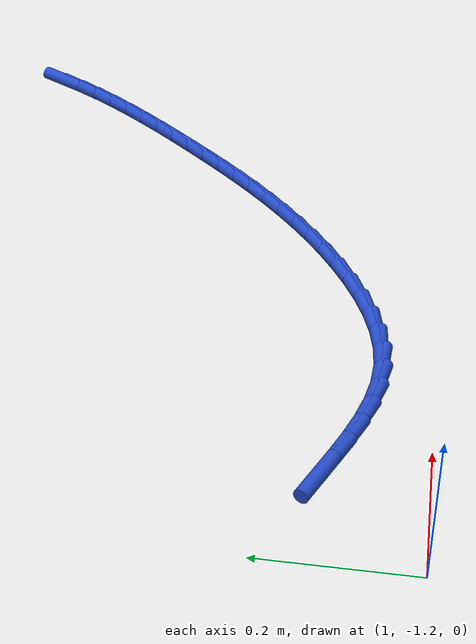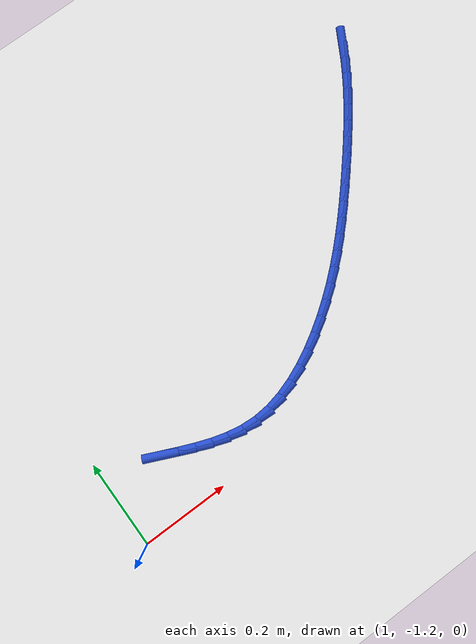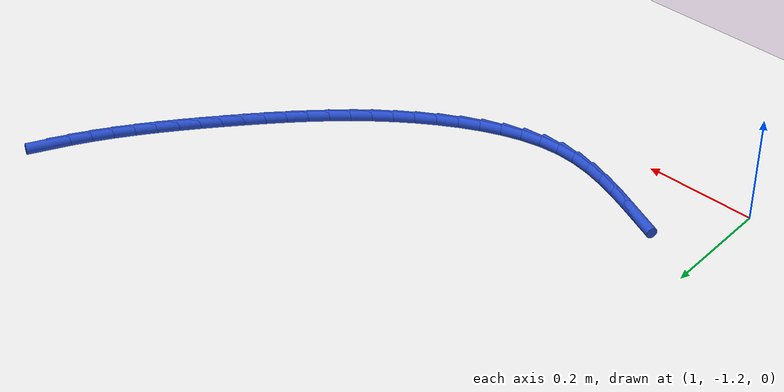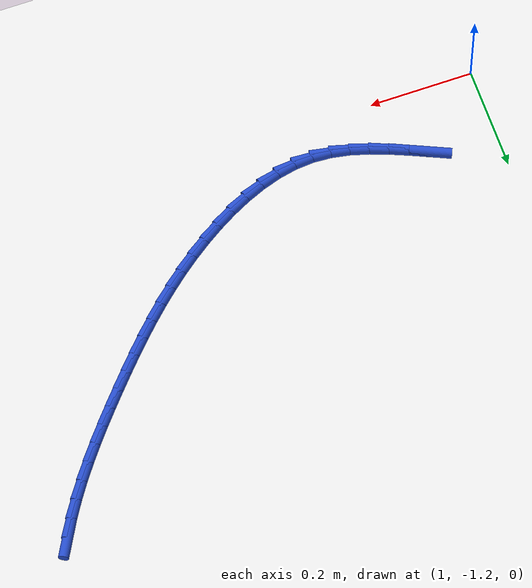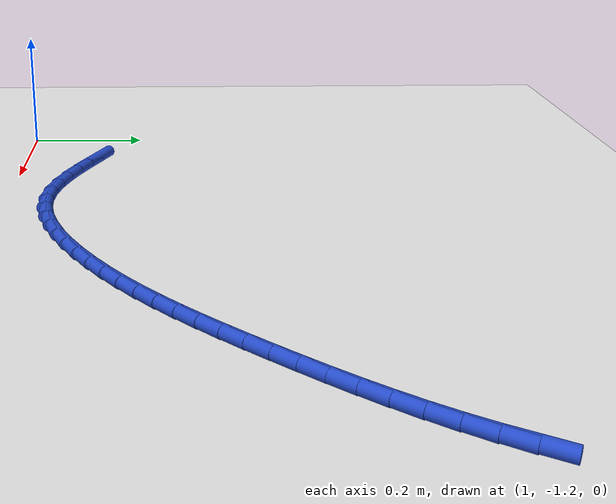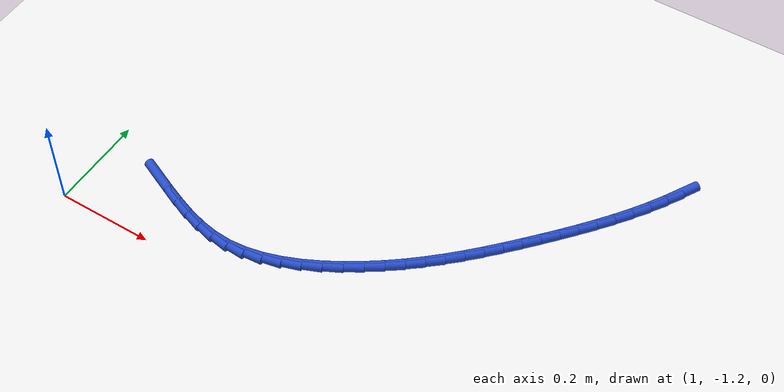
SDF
<sdf version="1.6">
 <world name="default">
  <model name="ground_plane">
   <static>1</static>
   <link name="link">
    <collision name="collision">
     <geometry><plane><normal>0 0 1</normal><size>100 100</size></plane></geometry>
     <surface><friction><ode><mu>100</mu><mu2>50</mu2></ode></friction></surface>
    </collision>
    <visual name="visual">
     <cast_shadows>0</cast_shadows>
     <geometry><plane><normal>0 0 1</normal><size>100 100</size></plane></geometry>
     <material>
      <script><uri>file://media/materials/scripts/gazebo.material</uri><name>Gazebo/WhiteGlow</name></script>
     </material>
    </visual>
   </link>
  </model>
  <model name="line">
   <link name="link_104">
    <pose>2.007958171692154 -0.562114356409999 0.01 0 1.57 1.0596922271778646</pose>
    <collision name="collision">
     <geometry><cylinder><radius>0.01</radius><length>0.08</length></cylinder></geometry>
    </collision>
    <visual name="visual">
     <material>
      <script><name>Gazebo/Blue</name><uri>file://media/materials/scripts/gazebo.material</uri></script>
     </material>
     <geometry><cylinder><radius>0.01</radius><length>0.08</length></cylinder></geometry>
    </visual>
   </link>
   <link name="link_105">
    <pose>1.9897505740231898 -0.5945810114050507 0.01 0 1.57 1.0152781321937727</pose>
    <collision name="collision">
     <geometry><cylinder><radius>0.01</radius><length>0.08</length></cylinder></geometry>
    </collision>
    <visual name="visual">
     <material>
      <script><name>Gazebo/Blue</name><uri>file://media/materials/scripts/gazebo.material</uri></script>
     </material>
     <geometry><cylinder><radius>0.01</radius><length>0.08</length></cylinder></geometry>
    </visual>
   </link>
   <link name="link_106">
    <pose>1.9699906216511787 -0.6264147524484014 0.01 0 1.57 0.976425578339522</pose>
    <collision name="collision">
     <geometry><cylinder><radius>0.01</radius><length>0.08</length></cylinder></geometry>
    </collision>
    <visual name="visual">
     <material>
      <script><name>Gazebo/Blue</name><uri>file://media/materials/scripts/gazebo.material</uri></script>
     </material>
     <geometry><cylinder><radius>0.01</radius><length>0.08</length></cylinder></geometry>
    </visual>
   </link>
   <link name="link_107">
    <pose>1.9488813639240374 -0.6576458798595787 0.01 0 1.57 0.9428924711230825</pose>
    <collision name="collision">
     <geometry><cylinder><radius>0.01</radius><length>0.08</length></cylinder></geometry>
    </collision>
    <visual name="visual">
     <material>
      <script><name>Gazebo/Blue</name><uri>file://media/materials/scripts/gazebo.material</uri></script>
     </material>
     <geometry><cylinder><radius>0.01</radius><length>0.08</length></cylinder></geometry>
    </visual>
   </link>
   <link name="link_108">
    <pose>1.9266258501896838 -0.6883046939581104 0.01 0 1.57 0.9144345413566514</pose>
    <collision name="collision">
     <geometry><cylinder><radius>0.01</radius><length>0.08</length></cylinder></geometry>
    </collision>
    <visual name="visual">
     <material>
      <script><name>Gazebo/Blue</name><uri>file://media/materials/scripts/gazebo.material</uri></script>
     </material>
     <geometry><cylinder><radius>0.01</radius><length>0.08</length></cylinder></geometry>
    </visual>
   </link>
   <link name="link_109">
    <pose>1.9034271297960357 -0.7184214950635255 0.01 0 1.57 0.8908292863738507</pose>
    <collision name="collision">
     <geometry><cylinder><radius>0.01</radius><length>0.08</length></cylinder></geometry>
    </collision>
    <visual name="visual">
     <material>
      <script><name>Gazebo/Blue</name><uri>file://media/materials/scripts/gazebo.material</uri></script>
     </material>
     <geometry><cylinder><radius>0.01</radius><length>0.08</length></cylinder></geometry>
    </visual>
   </link>
   <link name="link_110">
    <pose>1.879488252091011 -0.74802658349535 0.01 0 1.57 0.8718930055013202</pose>
    <collision name="collision">
     <geometry><cylinder><radius>0.01</radius><length>0.08</length></cylinder></geometry>
    </collision>
    <visual name="visual">
     <material>
      <script><name>Gazebo/Blue</name><uri>file://media/materials/scripts/gazebo.material</uri></script>
     </material>
     <geometry><cylinder><radius>0.01</radius><length>0.08</length></cylinder></geometry>
    </visual>
   </link>
   <link name="link_111">
    <pose>1.855012266422527 -0.7771502595731128 0.01 0 1.57 0.8574931025229686</pose>
    <collision name="collision">
     <geometry><cylinder><radius>0.01</radius><length>0.08</length></cylinder></geometry>
    </collision>
    <visual name="visual">
     <material>
      <script><name>Gazebo/Blue</name><uri>file://media/materials/scripts/gazebo.material</uri></script>
     </material>
     <geometry><cylinder><radius>0.01</radius><length>0.08</length></cylinder></geometry>
    </visual>
   </link>
   <link name="link_112">
    <pose>1.8302022221385017 -0.8058228236163416 0.01 0 1.57 0.8464655483616461</pose>
    <collision name="collision">
     <geometry><cylinder><radius>0.01</radius><length>0.08</length></cylinder></geometry>
    </collision>
    <visual name="visual">
     <material>
      <script><name>Gazebo/Blue</name><uri>file://media/materials/scripts/gazebo.material</uri></script>
     </material>
     <geometry><cylinder><radius>0.01</radius><length>0.08</length></cylinder></geometry>
    </visual>
   </link>
   <link name="link_113">
    <pose>1.8052184232487718 -0.8340607822312759 0.01 0 1.57 0.8329936706009642</pose>
    <collision name="collision">
     <geometry><cylinder><radius>0.01</radius><length>0.08</length></cylinder></geometry>
    </collision>
    <visual name="visual">
     <material>
      <script><name>Gazebo/Blue</name><uri>file://media/materials/scripts/gazebo.material</uri></script>
     </material>
     <geometry><cylinder><radius>0.01</radius><length>0.08</length></cylinder></geometry>
    </visual>
   </link>
   <link name="link_114">
    <pose>1.779994706484051 -0.8618075621315199 0.01 0 1.57 0.815143465448513</pose>
    <collision name="collision">
     <geometry><cylinder><radius>0.01</radius><length>0.08</length></cylinder></geometry>
    </collision>
    <visual name="visual">
     <material>
      <script><name>Gazebo/Blue</name><uri>file://media/materials/scripts/gazebo.material</uri></script>
     </material>
     <geometry><cylinder><radius>0.01</radius><length>0.08</length></cylinder></geometry>
    </visual>
   </link>
   <link name="link_115">
    <pose>1.754390192433558 -0.8889824794941837 0.01 0 1.57 0.7929218471101661</pose>
    <collision name="collision">
     <geometry><cylinder><radius>0.01</radius><length>0.08</length></cylinder></geometry>
    </collision>
    <visual name="visual">
     <material>
      <script><name>Gazebo/Blue</name><uri>file://media/materials/scripts/gazebo.material</uri></script>
     </material>
     <geometry><cylinder><radius>0.01</radius><length>0.08</length></cylinder></geometry>
    </visual>
   </link>
   <link name="link_116">
    <pose>1.7282639552527157 -0.9155048355124138 0.01 0 1.57 0.7663850751509137</pose>
    <collision name="collision">
     <geometry><cylinder><radius>0.01</radius><length>0.08</length></cylinder></geometry>
    </collision>
    <visual name="visual">
     <material>
      <script><name>Gazebo/Blue</name><uri>file://media/materials/scripts/gazebo.material</uri></script>
     </material>
     <geometry><cylinder><radius>0.01</radius><length>0.08</length></cylinder></geometry>
    </visual>
   </link>
   <link name="link_117">
    <pose>1.7014750690969411 -0.9412939313793574 0.01 0 1.57 0.7356495617890833</pose>
    <collision name="collision">
     <geometry><cylinder><radius>0.01</radius><length>0.08</length></cylinder></geometry>
    </collision>
    <visual name="visual">
     <material>
      <script><name>Gazebo/Blue</name><uri>file://media/materials/scripts/gazebo.material</uri></script>
     </material>
     <geometry><cylinder><radius>0.01</radius><length>0.08</length></cylinder></geometry>
    </visual>
   </link>
   <link name="link_118">
    <pose>1.673882608121655 -0.9662690682881614 0.01 0 1.57 0.7009038965185695</pose>
    <collision name="collision">
     <geometry><cylinder><radius>0.01</radius><length>0.08</length></cylinder></geometry>
    </collision>
    <visual name="visual">
     <material>
      <script><name>Gazebo/Blue</name><uri>file://media/materials/scripts/gazebo.material</uri></script>
     </material>
     <geometry><cylinder><radius>0.01</radius><length>0.08</length></cylinder></geometry>
    </visual>
   </link>
   <link name="link_119">
    <pose>1.6453456464822762 -0.9903495474319735 0.01 0 1.57 0.6624191537782965</pose>
    <collision name="collision">
     <geometry><cylinder><radius>0.01</radius><length>0.08</length></cylinder></geometry>
    </collision>
    <visual name="visual">
     <material>
      <script><name>Gazebo/Blue</name><uri>file://media/materials/scripts/gazebo.material</uri></script>
     </material>
     <geometry><cylinder><radius>0.01</radius><length>0.08</length></cylinder></geometry>
    </visual>
   </link>
   <link name="link_120">
    <pose>1.615723258334224 -1.0134546700039406 0.01 0 1.57 0.6205553473145585</pose>
    <collision name="collision">
     <geometry><cylinder><radius>0.01</radius><length>0.08</length></cylinder></geometry>
    </collision>
    <visual name="visual">
     <material>
      <script><name>Gazebo/Blue</name><uri>file://media/materials/scripts/gazebo.material</uri></script>
     </material>
     <geometry><cylinder><radius>0.01</radius><length>0.08</length></cylinder></geometry>
    </visual>
   </link>
   <link name="link_121">
    <pose>1.5848745178329187 -1.0355037371972091 0.01 0 1.57 0.5757426898340138</pose>
    <collision name="collision">
     <geometry><cylinder><radius>0.01</radius><length>0.08</length></cylinder></geometry>
    </collision>
    <visual name="visual">
     <material>
      <script><name>Gazebo/Blue</name><uri>file://media/materials/scripts/gazebo.material</uri></script>
     </material>
     <geometry><cylinder><radius>0.01</radius><length>0.08</length></cylinder></geometry>
    </visual>
   </link>
   <link name="link_122">
    <pose>1.552659866821432 -1.0564142863256576 0.01 0 1.57 0.5262530416023268</pose>
    <collision name="collision">
     <geometry><cylinder><radius>0.01</radius><length>0.08</length></cylinder></geometry>
    </collision>
    <visual name="visual">
     <material>
      <script><name>Gazebo/Blue</name><uri>file://media/materials/scripts/gazebo.material</uri></script>
     </material>
     <geometry><cylinder><radius>0.01</radius><length>0.08</length></cylinder></geometry>
    </visual>
   </link>
   <link name="link_123">
    <pose>1.519083272358157 -1.0759187531185377 0.01 0 1.57 0.4671531648743144</pose>
    <collision name="collision">
     <geometry><cylinder><radius>0.01</radius><length>0.08</length></cylinder></geometry>
    </collision>
    <visual name="visual">
     <material>
      <script><name>Gazebo/Blue</name><uri>file://media/materials/scripts/gazebo.material</uri></script>
     </material>
     <geometry><cylinder><radius>0.01</radius><length>0.08</length></cylinder></geometry>
    </visual>
   </link>
   <link name="link_124">
    <pose>1.4844163528327043 -1.0934043887643528 0.01 0 1.57 0.39582009256335854</pose>
    <collision name="collision">
     <geometry><cylinder><radius>0.01</radius><length>0.08</length></cylinder></geometry>
    </collision>
    <visual name="visual">
     <material>
      <script><name>Gazebo/Blue</name><uri>file://media/materials/scripts/gazebo.material</uri></script>
     </material>
     <geometry><cylinder><radius>0.01</radius><length>0.08</length></cylinder></geometry>
    </visual>
   </link>
   <link name="link_125">
    <pose>1.4489599840577492 -1.1082207117412972 0.01 0 1.57 0.30955523743675306</pose>
    <collision name="collision">
     <geometry><cylinder><radius>0.01</radius><length>0.08</length></cylinder></geometry>
    </collision>
    <visual name="visual">
     <material>
      <script><name>Gazebo/Blue</name><uri>file://media/materials/scripts/gazebo.material</uri></script>
     </material>
     <geometry><cylinder><radius>0.01</radius><length>0.08</length></cylinder></geometry>
    </visual>
   </link>
   <link name="link_126">
    <pose>1.4130150418459682 -1.1197172405275682 0.01 0 1.57 0.20535877902911692</pose>
    <collision name="collision">
     <geometry><cylinder><radius>0.01</radius><length>0.08</length></cylinder></geometry>
    </collision>
    <visual name="visual">
     <material>
      <script><name>Gazebo/Blue</name><uri>file://media/materials/scripts/gazebo.material</uri></script>
     </material>
     <geometry><cylinder><radius>0.01</radius><length>0.08</length></cylinder></geometry>
    </visual>
   </link>
   <link name="link_127">
    <pose>1.3768824020100376 -1.1272434936013593 0.01 0 1.57 0.08049033464202657</pose>
    <collision name="collision">
     <geometry><cylinder><radius>0.01</radius><length>0.08</length></cylinder></geometry>
    </collision>
    <visual name="visual">
     <material>
      <script><name>Gazebo/Blue</name><uri>file://media/materials/scripts/gazebo.material</uri></script>
     </material>
     <geometry><cylinder><radius>0.01</radius><length>0.08</length></cylinder></geometry>
    </visual>
   </link>
   <link name="link_128">
    <pose>1.3408629403626335 -1.1301489894408672 0.01 0 1.57 -0.05976134134294635</pose>
    <collision name="collision">
     <geometry><cylinder><radius>0.01</radius><length>0.08</length></cylinder></geometry>
    </collision>
    <visual name="visual">
     <material>
      <script><name>Gazebo/Blue</name><uri>file://media/materials/scripts/gazebo.material</uri></script>
     </material>
     <geometry><cylinder><radius>0.01</radius><length>0.08</length></cylinder></geometry>
    </visual>
   </link>
   <link name="link_129">
    <pose>1.3051957104190524 -1.128014926789158 0.01 0 1.57 -0.18412007941442937</pose>
    <collision name="collision">
     <geometry><cylinder><radius>0.01</radius><length>0.08</length></cylinder></geometry>
    </collision>
    <visual name="visual">
     <material>
      <script><name>Gazebo/Blue</name><uri>file://media/materials/scripts/gazebo.material</uri></script>
     </material>
     <geometry><cylinder><radius>0.01</radius><length>0.08</length></cylinder></geometry>
    </visual>
   </link>
   <link name="link_130">
    <pose>1.2698502377082503 -1.1214325657734736 0.01 0 1.57 -0.2816585564248641</pose>
    <collision name="collision">
     <geometry><cylinder><radius>0.01</radius><length>0.08</length></cylinder></geometry>
    </collision>
    <visual name="visual">
     <material>
      <script><name>Gazebo/Blue</name><uri>file://media/materials/scripts/gazebo.material</uri></script>
     </material>
     <geometry><cylinder><radius>0.01</radius><length>0.08</length></cylinder></geometry>
    </visual>
   </link>
   <link name="link_131">
    <pose>1.2347226150186792 -1.1112683571479312 0.01 0 1.57 -0.3524828807001034</pose>
    <collision name="collision">
     <geometry><cylinder><radius>0.01</radius><length>0.08</length></cylinder></geometry>
    </collision>
    <visual name="visual">
     <material>
      <script><name>Gazebo/Blue</name><uri>file://media/materials/scripts/gazebo.material</uri></script>
     </material>
     <geometry><cylinder><radius>0.01</radius><length>0.08</length></cylinder></geometry>
    </visual>
   </link>
   <link name="link_132">
    <pose>1.1997089335454632 -1.098388757637667 0.01 0 1.57 -0.398283522002772</pose>
    <collision name="collision">
     <geometry><cylinder><radius>0.01</radius><length>0.08</length></cylinder></geometry>
    </collision>
    <visual name="visual">
     <material>
      <script><name>Gazebo/Blue</name><uri>file://media/materials/scripts/gazebo.material</uri></script>
     </material>
     <geometry><cylinder><radius>0.01</radius><length>0.08</length></cylinder></geometry>
    </visual>
   </link>
   <link name="link_133">
    <pose>1.164705284483728 -1.0836602239678195 0.01 0 1.57 -0.42088854326167124</pose>
    <collision name="collision">
     <geometry><cylinder><radius>0.01</radius><length>0.08</length></cylinder></geometry>
    </collision>
    <visual name="visual">
     <material>
      <script><name>Gazebo/Blue</name><uri>file://media/materials/scripts/gazebo.material</uri></script>
     </material>
     <geometry><cylinder><radius>0.01</radius><length>0.08</length></cylinder></geometry>
    </visual>
   </link>
   <link name="link_134">
    <pose>1.1296077590285964 -1.0679492128635237 0.01 0 1.57 -0.4215370644343705</pose>
    <collision name="collision">
     <geometry><cylinder><radius>0.01</radius><length>0.08</length></cylinder></geometry>
    </collision>
    <visual name="visual">
     <material>
      <script><name>Gazebo/Blue</name><uri>file://media/materials/scripts/gazebo.material</uri></script>
     </material>
     <geometry><cylinder><radius>0.01</radius><length>0.08</length></cylinder></geometry>
    </visual>
   </link>
  </model>
 </world>
</sdf>
